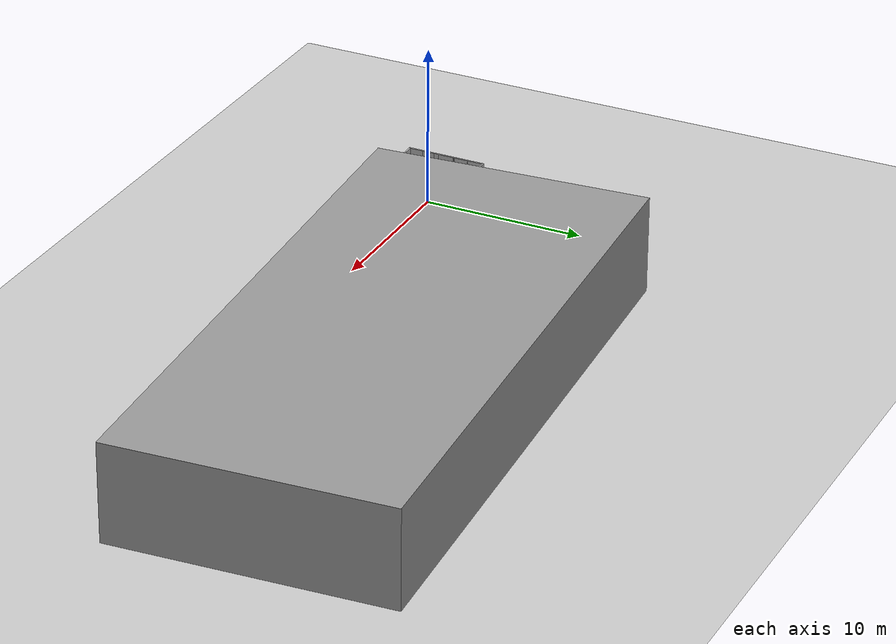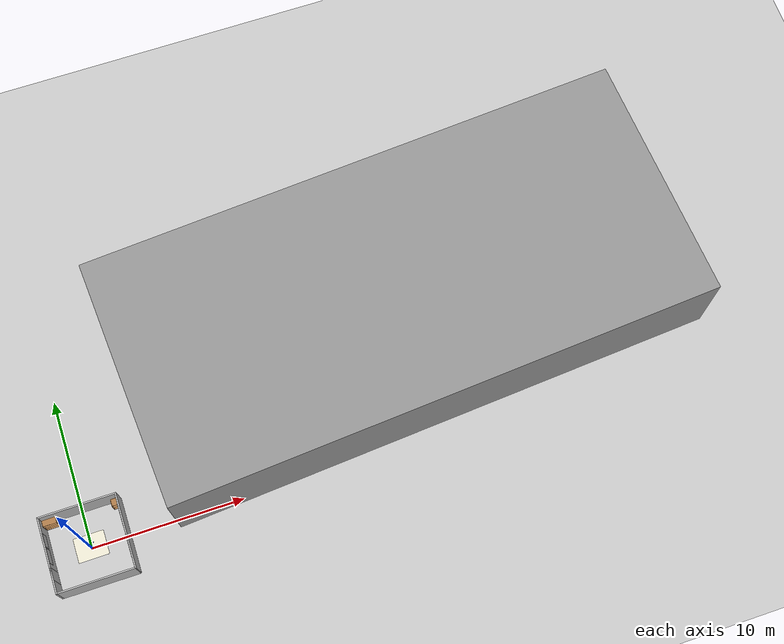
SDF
<sdf version="1.7">
 <world name="default">
  <light name="sun" type="directional">
   <pose>0 0 10 0 -0 0</pose>
   <diffuse>0.8 0.8 0.8 1</diffuse>
   <specular>0.2 0.2 0.2 1</specular>
   <attenuation>
    <range>1000</range>
    <constant>0.9</constant>
    <linear>0.01</linear>
    <quadratic>0.001</quadratic>
   </attenuation>
   <direction>-0.5 0.1 -0.9</direction>
   <spot><inner_angle>0</inner_angle><outer_angle>0</outer_angle><falloff>0</falloff></spot>
  </light>
  <model name="ground_plane">
   <static>1</static>
   <link name="link">
    <collision name="collision">
     <geometry><plane><normal>0 0 1</normal><size>100 100</size></plane></geometry>
     <surface>
      <contact><collide_bitmask>65535</collide_bitmask></contact>
      <friction><ode><mu>100</mu><mu2>50</mu2></ode></friction>
     </surface>
    </collision>
    <visual name="visual">
     <cast_shadows>0</cast_shadows>
     <geometry><plane><normal>0 0 1</normal><size>1 1</size></plane></geometry>
     <material>
      <script><uri>file://media/materials/scripts/gazebo.material</uri><name>Gazebo/Grey</name></script>
     </material>
    </visual>
   </link>
  </model>
  <gravity>0 0 -9.8</gravity>
  <magnetic_field>6e-06 2.3e-05 -4.2e-05</magnetic_field>
  <atmosphere type="adiabatic"/>
  <physics type="ode">
   <max_step_size>0.001</max_step_size>
   <real_time_factor>1</real_time_factor>
   <real_time_update_rate>1000</real_time_update_rate>
  </physics>
  <scene><ambient>0.4 0.4 0.4 1</ambient><background>0.7 0.7 0.7 1</background><shadows>1</shadows></scene>
  <audio><device>default</device></audio>
  <spherical_coordinates>
   <surface_model>EARTH_WGS84</surface_model>
   <latitude_deg>0</latitude_deg>
   <longitude_deg>0</longitude_deg>
   <elevation>0</elevation>
   <heading_deg>0</heading_deg>
  </spherical_coordinates>
  <model name="Bookshelf">
   <static>1</static>
   <link name="link">
    <inertial><mass>1</mass></inertial>
    <collision name="back">
     <pose>0 0.005 0.6 0 -0 0</pose>
     <geometry><box><size>0.9 0.01 1.2</size></box></geometry>
    </collision>
    <visual name="visual1">
     <pose>0 0.005 0.6 0 -0 0</pose>
     <geometry><box><size>0.9 0.01 1.2</size></box></geometry>
     <material>
      <diffuse>1 1 1 1</diffuse>
      <script><uri>file://media/materials/scripts/gazebo.material</uri><name>Gazebo/Wood</name></script>
      <pbr>
       <metal>
        <albedo_map>https://fuel.ignitionrobotics.org/1.0/openrobotics/models/bookshelf/3/files/bookshelf_diffuse.jpg</albedo_map>
       </metal>
      </pbr>
     </material>
    </visual>
    <collision name="left_side">
     <pose>0.45 -0.195 0.6 0 -0 0</pose>
     <geometry><box><size>0.02 0.4 1.2</size></box></geometry>
    </collision>
    <visual name="visual2">
     <pose>0.45 -0.195 0.6 0 -0 0</pose>
     <geometry><box><size>0.02 0.4 1.2</size></box></geometry>
     <material>
      <diffuse>1 1 1 1</diffuse>
      <script><uri>file://media/materials/scripts/gazebo.material</uri><name>Gazebo/Wood</name></script>
      <pbr>
       <metal>
        <albedo_map>https://fuel.ignitionrobotics.org/1.0/openrobotics/models/bookshelf/3/files/bookshelf_diffuse.jpg</albedo_map>
       </metal>
      </pbr>
     </material>
    </visual>
    <collision name="right_side">
     <pose>-0.45 -0.195 0.6 0 -0 0</pose>
     <geometry><box><size>0.02 0.4 1.2</size></box></geometry>
    </collision>
    <visual name="visual3">
     <pose>-0.45 -0.195 0.6 0 -0 0</pose>
     <geometry><box><size>0.02 0.4 1.2</size></box></geometry>
     <material>
      <diffuse>1 1 1 1</diffuse>
      <script><uri>file://media/materials/scripts/gazebo.material</uri><name>Gazebo/Wood</name></script>
      <pbr>
       <metal>
        <albedo_map>https://fuel.ignitionrobotics.org/1.0/openrobotics/models/bookshelf/3/files/bookshelf_diffuse.jpg</albedo_map>
       </metal>
      </pbr>
     </material>
    </visual>
    <collision name="bottom">
     <pose>0 -0.195 0.03 0 -0 0</pose>
     <geometry><box><size>0.88 0.4 0.06</size></box></geometry>
    </collision>
    <visual name="visual4">
     <pose>0 -0.195 0.03 0 -0 0</pose>
     <geometry><box><size>0.88 0.4 0.06</size></box></geometry>
     <material>
      <diffuse>1 1 1 1</diffuse>
      <script><uri>file://media/materials/scripts/gazebo.material</uri><name>Gazebo/Wood</name></script>
      <pbr>
       <metal>
        <albedo_map>https://fuel.ignitionrobotics.org/1.0/openrobotics/models/bookshelf/3/files/bookshelf_diffuse.jpg</albedo_map>
       </metal>
      </pbr>
     </material>
    </visual>
    <collision name="top">
     <pose>0 -0.195 1.19 0 -0 0</pose>
     <geometry><box><size>0.88 0.4 0.02</size></box></geometry>
    </collision>
    <visual name="visual5">
     <pose>0 -0.195 1.19 0 -0 0</pose>
     <geometry><box><size>0.88 0.4 0.02</size></box></geometry>
     <material>
      <diffuse>1 1 1 1</diffuse>
      <script><uri>file://media/materials/scripts/gazebo.material</uri><name>Gazebo/Wood</name></script>
      <pbr>
       <metal>
        <albedo_map>https://fuel.ignitionrobotics.org/1.0/openrobotics/models/bookshelf/3/files/bookshelf_diffuse.jpg</albedo_map>
       </metal>
      </pbr>
     </material>
    </visual>
    <collision name="low_shelf">
     <pose>0 -0.195 0.43 0 -0 0</pose>
     <geometry><box><size>0.88 0.4 0.02</size></box></geometry>
    </collision>
    <visual name="visual6">
     <pose>0 -0.195 0.43 0 -0 0</pose>
     <geometry><box><size>0.88 0.4 0.02</size></box></geometry>
     <material>
      <diffuse>1 1 1 1</diffuse>
      <script><uri>file://media/materials/scripts/gazebo.material</uri><name>Gazebo/Wood</name></script>
      <pbr>
       <metal>
        <albedo_map>https://fuel.ignitionrobotics.org/1.0/openrobotics/models/bookshelf/3/files/bookshelf_diffuse.jpg</albedo_map>
       </metal>
      </pbr>
     </material>
    </visual>
    <collision name="high_shelf">
     <pose>0 -0.195 0.8 0 -0 0</pose>
     <geometry><box><size>0.88 0.4 0.02</size></box></geometry>
    </collision>
    <visual name="visual7">
     <pose>0 -0.195 0.8 0 -0 0</pose>
     <geometry><box><size>0.88 0.4 0.02</size></box></geometry>
     <material>
      <diffuse>1 1 1 1</diffuse>
      <script><uri>file://media/materials/scripts/gazebo.material</uri><name>Gazebo/Wood</name></script>
      <pbr>
       <metal>
        <albedo_map>https://fuel.ignitionrobotics.org/1.0/openrobotics/models/bookshelf/3/files/bookshelf_diffuse.jpg</albedo_map>
       </metal>
      </pbr>
     </material>
    </visual>
   </link>
   <pose>-2 2.4 0 0 -0 0</pose>
  </model>
  <model name="cabinet">
   <static>1</static>
   <link name="cabinet_bottom_plate">
    <inertial>
     <pose>0 0 -1 0 -0 0</pose>
     <inertia><ixx>2.05</ixx><ixy>0</ixy><ixz>0</ixz><iyy>2.05</iyy><iyz>0</iyz><izz>2.05</izz></inertia>
     <mass>25</mass>
    </inertial>
    <collision name="cabinet_bottom_plate_geom">
     <pose>0 0 0.01 0 -0 0</pose>
     <geometry><box><size>0.45 0.45 0.02</size></box></geometry>
    </collision>
    <visual name="cabinet_bottom_plate_geom_visual">
     <pose>0 0 0.01 0 -0 0</pose>
     <geometry><box><size>0.45 0.45 0.02</size></box></geometry>
     <material>
      <script><uri>file://media/materials/scripts/gazebo.material</uri><name>Gazebo/Wood</name></script>
     </material>
    </visual>
    <collision name="cabinet_bottom_plate_geom_cabinet_back_plate">
     <pose>0.235 0 0.51 0 -0 0</pose>
     <geometry><box><size>0.02 0.45 1.02</size></box></geometry>
    </collision>
    <visual name="cabinet_bottom_plate_geom_cabinet_back_plate_visual">
     <pose>0.235 0 0.51 0 -0 0</pose>
     <geometry><box><size>0.02 0.45 1.02</size></box></geometry>
     <material>
      <script><uri>file://media/materials/scripts/gazebo.material</uri><name>Gazebo/Wood</name></script>
     </material>
    </visual>
    <collision name="cabinet_bottom_plate_geom_cabinet_left_plate">
     <pose>0 0.235 0.51 0 -0 0</pose>
     <geometry><box><size>0.45 0.02 1.02</size></box></geometry>
    </collision>
    <visual name="cabinet_bottom_plate_geom_cabinet_left_plate_visual">
     <pose>0 0.235 0.51 0 -0 0</pose>
     <geometry><box><size>0.45 0.02 1.02</size></box></geometry>
     <material>
      <script><uri>file://media/materials/scripts/gazebo.material</uri><name>Gazebo/Wood</name></script>
     </material>
    </visual>
    <collision name="cabinet_bottom_plate_geom_cabinet_middle_plate">
     <pose>0 0 0.51 0 -0 0</pose>
     <geometry><box><size>0.45 0.45 0.02</size></box></geometry>
    </collision>
    <visual name="cabinet_bottom_plate_geom_cabinet_middle_plate_visual">
     <pose>0 0 0.51 0 -0 0</pose>
     <geometry><box><size>0.45 0.45 0.02</size></box></geometry>
     <material>
      <script><uri>file://media/materials/scripts/gazebo.material</uri><name>Gazebo/Wood</name></script>
     </material>
    </visual>
    <collision name="cabinet_bottom_plate_geom_cabinet_right_plate">
     <pose>0 -0.235 0.51 0 -0 0</pose>
     <geometry><box><size>0.45 0.02 1.02</size></box></geometry>
    </collision>
    <visual name="cabinet_bottom_plate_geom_cabinet_right_plate_visual">
     <pose>0 -0.235 0.51 0 -0 0</pose>
     <geometry><box><size>0.45 0.02 1.02</size></box></geometry>
     <material>
      <script><uri>file://media/materials/scripts/gazebo.material</uri><name>Gazebo/Wood</name></script>
     </material>
    </visual>
    <collision name="cabinet_bottom_plate_geom_cabinet_top_plate">
     <pose>0 0 1.01 0 -0 0</pose>
     <geometry><box><size>0.45 0.45 0.02</size></box></geometry>
    </collision>
    <visual name="cabinet_bottom_plate_geom_cabinet_top_plate_visual">
     <pose>0 0 1.01 0 -0 0</pose>
     <geometry><box><size>0.45 0.45 0.02</size></box></geometry>
     <material>
      <script><uri>file://media/materials/scripts/gazebo.material</uri><name>Gazebo/Wood</name></script>
     </material>
    </visual>
   </link>
   <pose>2.21 2.17 0 0 -0 1.5707</pose>
  </model>
  <model name="makerspet_poster">
   <link name="link">
    <visual name="visual">
     <geometry><box><size>0.03 0.85714 1</size></box></geometry>
     <material>
      <script>
       <uri>https://fuel.ignitionrobotics.org/1.0/makerspet/models/makerspet_poster/1/files/material/script</uri>
       <uri>https://fuel.ignitionrobotics.org/1.0/makerspet/models/makerspet_poster/1/files/material/textures</uri>
       <name>Custom/makerspet</name>
      </script>
     </material>
    </visual>
   </link>
   <static>1</static>
   <pose>-2.45 1 1.5 0 -0 0</pose>
  </model>
  <model name="kaiaai_poster">
   <link name="link">
    <visual name="visual">
     <geometry><box><size>0.03 0.9782 1</size></box></geometry>
     <material>
      <script>
       <uri>https://fuel.ignitionrobotics.org/1.0/makerspet/models/kaiaai_poster/1/files/material/script</uri>
       <uri>https://fuel.ignitionrobotics.org/1.0/makerspet/models/kaiaai_poster/1/files/material/textures</uri>
       <name>Custom/kaiaai</name>
      </script>
     </material>
    </visual>
   </link>
   <static>1</static>
   <pose>-2.45 0 1.5 0 -0 0</pose>
  </model>
  <model name="door_08x2m_0">
   <link name="link">
    <visual name="visual">
     <geometry><box><size>0.1 0.8 2</size></box></geometry>
     <material>
      <script>
       <uri>https://fuel.ignitionrobotics.org/1.0/makerspet/models/door_08x2m/1/files/material/script</uri>
       <uri>https://fuel.ignitionrobotics.org/1.0/makerspet/models/door_08x2m/1/files/material/textures</uri>
       <name>Custom/door_08x2m</name>
      </script>
     </material>
    </visual>
   </link>
   <static>1</static>
   <pose>-2.495 -1.2 1 0 -0 0</pose>
  </model>
  <model name="living_room"><static>0</static><pose>-1.83596 1.40391 0 0 -0 0</pose></model>
  <model name="room_wall_2x5">
   <link name="link">
    <visual name="visual">
     <geometry><box><size>0.1 5 2</size></box></geometry>
     <material>
      <script>
       <uri>https://fuel.ignitionrobotics.org/1.0/makerspet/models/room_wall_2x5m/1/files/material/script</uri>
       <uri>https://fuel.ignitionrobotics.org/1.0/makerspet/models/room_wall_2x5m/1/files/material/textures</uri>
       <name>Custom/room_wall_2x5</name>
      </script>
     </material>
    </visual>
    <collision name="collision"><geometry><box><size>0.1 5 2</size></box></geometry></collision>
   </link>
   <static>1</static>
   <pose>-2.5 0 1 0 -0 0</pose>
  </model>
  <model name="room_wall_2x5_0">
   <link name="link">
    <visual name="visual">
     <geometry><box><size>0.1 5 2</size></box></geometry>
     <material>
      <script>
       <uri>https://fuel.ignitionrobotics.org/1.0/makerspet/models/room_wall_2x5m/1/files/material/script</uri>
       <uri>https://fuel.ignitionrobotics.org/1.0/makerspet/models/room_wall_2x5m/1/files/material/textures</uri>
       <name>Custom/room_wall_2x5</name>
      </script>
     </material>
    </visual>
    <collision name="collision"><geometry><box><size>0.1 5 2</size></box></geometry></collision>
   </link>
   <static>1</static>
   <pose>2.5 0 1 0 -0 0</pose>
  </model>
  <model name="room_wall_2x5_1">
   <link name="link">
    <visual name="visual">
     <geometry><box><size>0.1 5 2</size></box></geometry>
     <material>
      <script>
       <uri>https://fuel.ignitionrobotics.org/1.0/makerspet/models/room_wall_2x5m/1/files/material/script</uri>
       <uri>https://fuel.ignitionrobotics.org/1.0/makerspet/models/room_wall_2x5m/1/files/material/textures</uri>
       <name>Custom/room_wall_2x5</name>
      </script>
     </material>
    </visual>
    <collision name="collision"><geometry><box><size>0.1 5 2</size></box></geometry></collision>
   </link>
   <static>1</static>
   <pose>0 -2.45 1 0 -0 1.5707</pose>
  </model>
  <model name="room_wall_2x5_2">
   <link name="link">
    <visual name="visual">
     <geometry><box><size>0.1 5 2</size></box></geometry>
     <material>
      <script>
       <uri>https://fuel.ignitionrobotics.org/1.0/makerspet/models/room_wall_2x5m/1/files/material/script</uri>
       <uri>https://fuel.ignitionrobotics.org/1.0/makerspet/models/room_wall_2x5m/1/files/material/textures</uri>
       <name>Custom/room_wall_2x5</name>
      </script>
     </material>
    </visual>
    <collision name="collision"><geometry><box><size>0.1 5 2</size></box></geometry></collision>
   </link>
   <static>1</static>
   <pose>0 2.45 1 0 -0 1.5707</pose>
  </model>
  <model name="rug_ivory_2m_0">
   <link name="link">
    <visual name="visual">
     <geometry><box><size>1.6 2 0.005</size></box></geometry>
     <material>
      <script>
       <uri>https://fuel.ignitionrobotics.org/1.0/makerspet/models/rug_ivory_2m/1/files/material/script</uri>
       <uri>https://fuel.ignitionrobotics.org/1.0/makerspet/models/rug_ivory_2m/1/files/material/textures</uri>
       <name>Custom/rug_ivory_2m</name>
      </script>
     </material>
    </visual>
   </link>
   <static>1</static>
   <pose>-0.054462 0.131684 0 0 -0 1.5707</pose>
  </model>
  <model name="window_curtains">
   <link name="link">
    <visual name="visual">
     <geometry><box><size>0.02 1.5676 2</size></box></geometry>
     <material>
      <script>
       <uri>https://fuel.ignitionrobotics.org/1.0/makerspet/models/window_curtains/1/files/material/script</uri>
       <uri>https://fuel.ignitionrobotics.org/1.0/makerspet/models/window_curtains/1/files/material/textures</uri>
       <name>Custom/window_curtains</name>
      </script>
      <emissive>0 1 0 1</emissive>
     </material>
    </visual>
   </link>
   <static>1</static>
   <pose>2.45 1 1 0 -0 0</pose>
  </model>
  <model name="window_curtains_0">
   <link name="link">
    <visual name="visual">
     <geometry><box><size>0.02 1.5676 2</size></box></geometry>
     <material>
      <script>
       <uri>https://fuel.ignitionrobotics.org/1.0/makerspet/models/window_curtains/1/files/material/script</uri>
       <uri>https://fuel.ignitionrobotics.org/1.0/makerspet/models/window_curtains/1/files/material/textures</uri>
       <name>Custom/window_curtains</name>
      </script>
      <emissive>0 1 0 1</emissive>
     </material>
    </visual>
   </link>
   <static>1</static>
   <pose>2.45 -1 1 0 -0 0</pose>
  </model>
  <model name="unit_box">
   <pose>23.4772 9.15629 2.99673 1.39524 -1.57075 1.81543</pose>
   <link name="link">
    <inertial>
     <mass>1</mass>
     <inertia>
      <ixx>0.166667</ixx>
      <ixy>0</ixy>
      <ixz>0</ixz>
      <iyy>0.166667</iyy>
      <iyz>0</iyz>
      <izz>0.166667</izz>
     </inertia>
    </inertial>
    <collision name="collision"><geometry><box><size>5.99421 16.7803 36.8228</size></box></geometry></collision>
    <visual name="visual">
     <geometry><box><size>5.99421 16.7803 36.8228</size></box></geometry>
     <material>
      <script><name>Gazebo/Grey</name><uri>file://media/materials/scripts/gazebo.material</uri></script>
     </material>
    </visual>
   </link>
  </model>
  <model name="blue_cube">
   <pose>0.209639 0.258602 0.398231 0 -0 0</pose>
   <link name="link">
    <inertial>
     <mass>0.01</mass>
     <inertia>
      <ixx>2.083e-05</ixx>
      <iyy>2.083e-05</iyy>
      <izz>2.083e-05</izz>
      <ixy>0</ixy>
      <ixz>0</ixz>
      <iyz>0</iyz>
     </inertia>
    </inertial>
    <collision name="collision">
     <geometry><box><size>0.05 0.05 0.05</size></box></geometry>
     <surface><friction><ode><mu>5.0</mu><mu2>5.0</mu2></ode></friction></surface>
    </collision>
    <visual name="visual">
     <geometry><box><size>0.05 0.05 0.05</size></box></geometry>
     <material><ambient>0 0 1 1</ambient><diffuse>0 0 1 1</diffuse></material>
    </visual>
   </link>
  </model>
  <model name="green_cube">
   <pose>0.008505 0.257563 0.39824 0 -0 0</pose>
   <link name="link">
    <inertial>
     <mass>0.01</mass>
     <inertia>
      <ixx>2.083e-05</ixx>
      <iyy>2.083e-05</iyy>
      <izz>2.083e-05</izz>
      <ixy>0</ixy>
      <ixz>0</ixz>
      <iyz>0</iyz>
     </inertia>
    </inertial>
    <collision name="collision"><geometry><box><size>0.05 0.05 0.05</size></box></geometry></collision>
    <visual name="visual">
     <geometry><box><size>0.05 0.05 0.05</size></box></geometry>
     <material><ambient>0 1 0 1</ambient><diffuse>0 1 0 1</diffuse></material>
    </visual>
   </link>
  </model>
 </world>
</sdf>
